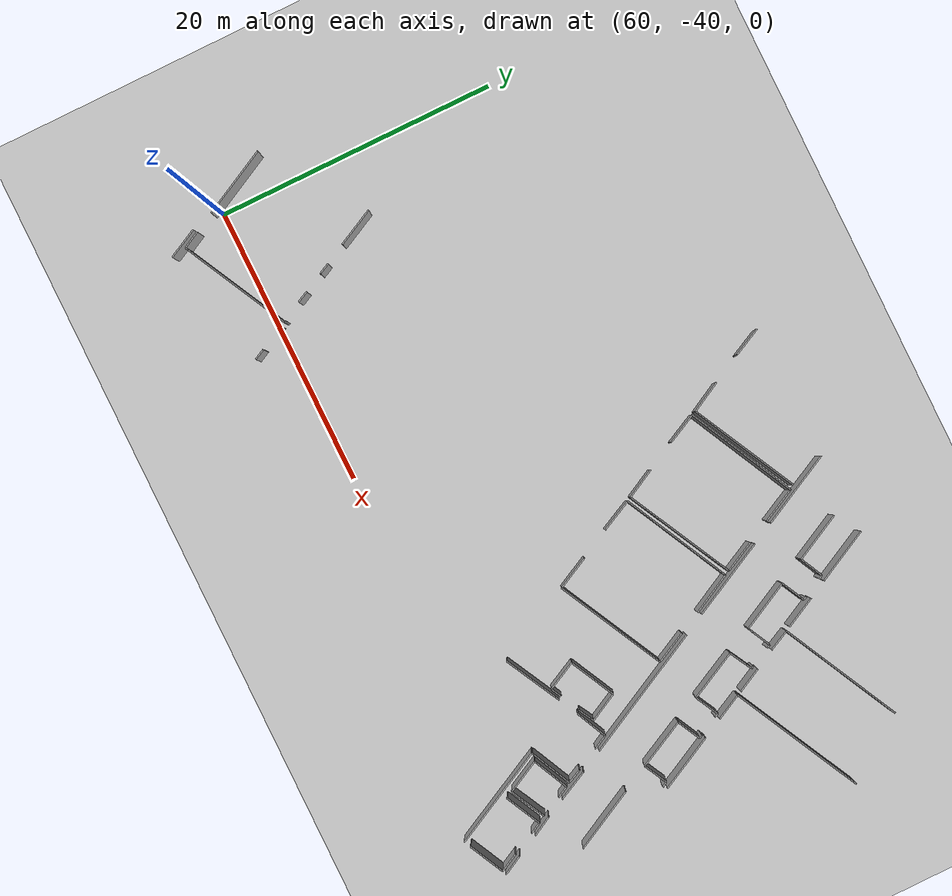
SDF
<sdf version="1.6">
 <world name="default">
  <model name="ground_plane">
   <static>1</static>
   <link name="link">
    <collision name="collision">
     <geometry><plane><normal>0 0 1</normal><size>100 100</size></plane></geometry>
     <surface><friction><ode><mu>100</mu><mu2>50</mu2></ode></friction></surface>
    </collision>
    <visual name="visual">
     <cast_shadows>0</cast_shadows>
     <geometry><plane><normal>0 0 1</normal><size>100 100</size></plane></geometry>
     <material>
      <script><uri>file://media/materials/scripts/gazebo.material</uri><name>Gazebo/Grey</name></script>
     </material>
    </visual>
   </link>
  </model>
  <model name="0510045926_A-40">
   <static>1</static>
   <link name="Wall_69">
    <collision name="Wall_69_Collision">
     <geometry><box><size>2.3912031758 0.1 2.5</size></box></geometry>
     <pose>1.1956015879 0 1.25 0 0 0</pose>
    </collision>
    <visual name="Wall_69_Visual">
     <pose>1.1956015879 0 1.25 0 0 0</pose>
     <geometry><box><size>2.3912031758 0.1 2.5</size></box></geometry>
     <material>
      <script><uri>file://media/materials/scripts/gazebo.material</uri><name>Gazebo/Grey</name></script>
      <ambient>1 1 1 1</ambient>
     </material>
    </visual>
    <pose>235.726467957 -119.05045595 0 0 0 2.04123266553</pose>
   </link>
   <link name="Wall_70">
    <collision name="Wall_70_Collision">
     <geometry><box><size>4.13078900254 0.1 2.5</size></box></geometry>
     <pose>2.06539450127 0 1.25 0 0 0</pose>
    </collision>
    <visual name="Wall_70_Visual">
     <pose>2.06539450127 0 1.25 0 0 0</pose>
     <geometry><box><size>4.13078900254 0.1 2.5</size></box></geometry>
     <material>
      <script><uri>file://media/materials/scripts/gazebo.material</uri><name>Gazebo/Grey</name></script>
      <ambient>1 1 1 1</ambient>
     </material>
    </visual>
    <pose>233.964856615 -115.636635932 0 0 0 2.04430977668</pose>
   </link>
   <link name="Wall_82">
    <collision name="Wall_82_Collision">
     <geometry><box><size>9.11722437358 0.1 2.5</size></box></geometry>
     <pose>4.55861218679 0 1.25 0 0 0</pose>
    </collision>
    <visual name="Wall_82_Visual">
     <pose>4.55861218679 0 1.25 0 0 0</pose>
     <geometry><box><size>9.11722437358 0.1 2.5</size></box></geometry>
     <material>
      <script><uri>file://media/materials/scripts/gazebo.material</uri><name>Gazebo/Grey</name></script>
      <ambient>1 1 1 1</ambient>
     </material>
    </visual>
    <pose>235.891460373 -119.366987556 0 0 0 0.470819425823</pose>
   </link>
   <link name="Wall_86">
    <collision name="Wall_86_Collision">
     <geometry><box><size>1.89134331663 0.1 2.5</size></box></geometry>
     <pose>0.945671658314 0 1.25 0 0 0</pose>
    </collision>
    <visual name="Wall_86_Visual">
     <pose>0.945671658314 0 1.25 0 0 0</pose>
     <geometry><box><size>1.89134331663 0.1 2.5</size></box></geometry>
     <material>
      <script><uri>file://media/materials/scripts/gazebo.material</uri><name>Gazebo/Grey</name></script>
      <ambient>1 1 1 1</ambient>
     </material>
    </visual>
    <pose>238.186124138 -123.877372559 0 0 0 2.0461480832</pose>
   </link>
   <link name="Wall_87">
    <collision name="Wall_87_Collision">
     <geometry><box><size>1.59802516987 0.1 2.5</size></box></geometry>
     <pose>0.799012584937 0 1.25 0 0 0</pose>
    </collision>
    <visual name="Wall_87_Visual">
     <pose>0.799012584937 0 1.25 0 0 0</pose>
     <geometry><box><size>1.59802516987 0.1 2.5</size></box></geometry>
     <material>
      <script><uri>file://media/materials/scripts/gazebo.material</uri><name>Gazebo/Grey</name></script>
      <ambient>1 1 1 1</ambient>
     </material>
    </visual>
    <pose>236.586966868 -120.805721429 0 0 0 2.02108866282</pose>
   </link>
   <link name="Wall_96">
    <collision name="Wall_96_Collision">
     <geometry><box><size>9.90516734899 0.1 2.5</size></box></geometry>
     <pose>4.95258367449 0 1.25 0 0 0</pose>
    </collision>
    <visual name="Wall_96_Visual">
     <pose>4.95258367449 0 1.25 0 0 0</pose>
     <geometry><box><size>9.90516734899 0.1 2.5</size></box></geometry>
     <material>
      <script><uri>file://media/materials/scripts/gazebo.material</uri><name>Gazebo/Grey</name></script>
      <ambient>1 1 1 1</ambient>
     </material>
    </visual>
    <pose>238.302888002 -124.164713199 0 0 0 0.473435037719</pose>
   </link>
   <link name="Wall_104">
    <collision name="Wall_104_Collision">
     <geometry><box><size>4.21026454566 0.1 2.5</size></box></geometry>
     <pose>2.10513227283 0 1.25 0 0 0</pose>
    </collision>
    <visual name="Wall_104_Visual">
     <pose>2.10513227283 0 1.25 0 0 0</pose>
     <geometry><box><size>4.21026454566 0.1 2.5</size></box></geometry>
     <material>
      <script><uri>file://media/materials/scripts/gazebo.material</uri><name>Gazebo/Grey</name></script>
      <ambient>1 1 1 1</ambient>
     </material>
    </visual>
    <pose>241.838802409 -131.105563417 0 0 0 2.04134632833</pose>
   </link>
   <link name="Wall_105">
    <collision name="Wall_105_Collision">
     <geometry><box><size>1.99934995767 0.1 2.5</size></box></geometry>
     <pose>0.999674978837 0 1.25 0 0 0</pose>
    </collision>
    <visual name="Wall_105_Visual">
     <pose>0.999674978837 0 1.25 0 0 0</pose>
     <geometry><box><size>1.99934995767 0.1 2.5</size></box></geometry>
     <material>
      <script><uri>file://media/materials/scripts/gazebo.material</uri><name>Gazebo/Grey</name></script>
      <ambient>1 1 1 1</ambient>
     </material>
    </visual>
    <pose>239.211615466 -125.945615961 0 0 0 2.04261999708</pose>
   </link>
   <link name="Wall_174">
    <collision name="Wall_174_Collision">
     <geometry><box><size>8.17603688049 0.1 2.5</size></box></geometry>
     <pose>4.08801844024 0 1.25 0 0 0</pose>
    </collision>
    <visual name="Wall_174_Visual">
     <pose>4.08801844024 0 1.25 0 0 0</pose>
     <geometry><box><size>8.17603688049 0.1 2.5</size></box></geometry>
     <material>
      <script><uri>file://media/materials/scripts/gazebo.material</uri><name>Gazebo/Grey</name></script>
      <ambient>1 1 1 1</ambient>
     </material>
    </visual>
    <pose>227.318200567 -114.657088645 0 0 0 -2.6688229583</pose>
   </link>
   <link name="Wall_175">
    <collision name="Wall_175_Collision">
     <geometry><box><size>2.39088924118 0.1 2.5</size></box></geometry>
     <pose>1.19544462059 0 1.25 0 0 0</pose>
    </collision>
    <visual name="Wall_175_Visual">
     <pose>1.19544462059 0 1.25 0 0 0</pose>
     <geometry><box><size>2.39088924118 0.1 2.5</size></box></geometry>
     <material>
      <script><uri>file://media/materials/scripts/gazebo.material</uri><name>Gazebo/Grey</name></script>
      <ambient>1 1 1 1</ambient>
     </material>
    </visual>
    <pose>220.038988977 -118.380079069 0 0 0 2.06322048625</pose>
   </link>
   <link name="Wall_176">
    <collision name="Wall_176_Collision">
     <geometry><box><size>2.16253494012 0.1 2.5</size></box></geometry>
     <pose>1.08126747006 0 1.25 0 0 0</pose>
    </collision>
    <visual name="Wall_176_Visual">
     <pose>1.08126747006 0 1.25 0 0 0</pose>
     <geometry><box><size>2.16253494012 0.1 2.5</size></box></geometry>
     <material>
      <script><uri>file://media/materials/scripts/gazebo.material</uri><name>Gazebo/Grey</name></script>
      <ambient>1 1 1 1</ambient>
     </material>
    </visual>
    <pose>217.855250884 -114.221000996 0 0 0 2.03103187555</pose>
   </link>
   <link name="Wall_177">
    <collision name="Wall_177_Collision">
     <geometry><box><size>8.24359890902 0.1 2.5</size></box></geometry>
     <pose>4.12179945451 0 1.25 0 0 0</pose>
    </collision>
    <visual name="Wall_177_Visual">
     <pose>4.12179945451 0 1.25 0 0 0</pose>
     <geometry><box><size>8.24359890902 0.1 2.5</size></box></geometry>
     <material>
      <script><uri>file://media/materials/scripts/gazebo.material</uri><name>Gazebo/Grey</name></script>
      <ambient>1 1 1 1</ambient>
     </material>
    </visual>
    <pose>220.159814193 -118.676557751 0 0 0 0.465754492511</pose>
   </link>
   <link name="Wall_178">
    <collision name="Wall_178_Collision">
     <geometry><box><size>2.62875515957 0.1 2.5</size></box></geometry>
     <pose>1.31437757979 0 1.25 0 0 0</pose>
    </collision>
    <visual name="Wall_178_Visual">
     <pose>1.31437757979 0 1.25 0 0 0</pose>
     <geometry><box><size>2.62875515957 0.1 2.5</size></box></geometry>
     <material>
      <script><uri>file://media/materials/scripts/gazebo.material</uri><name>Gazebo/Grey</name></script>
      <ambient>1 1 1 1</ambient>
     </material>
    </visual>
    <pose>227.525329509 -114.974381754 0 0 0 -1.10395315066</pose>
   </link>
   <link name="Wall_179">
    <collision name="Wall_179_Collision">
     <geometry><box><size>2.37878603092 0.1 2.5</size></box></geometry>
     <pose>1.18939301546 0 1.25 0 0 0</pose>
    </collision>
    <visual name="Wall_179_Visual">
     <pose>1.18939301546 0 1.25 0 0 0</pose>
     <geometry><box><size>2.37878603092 0.1 2.5</size></box></geometry>
     <material>
      <script><uri>file://media/materials/scripts/gazebo.material</uri><name>Gazebo/Grey</name></script>
      <ambient>1 1 1 1</ambient>
     </material>
    </visual>
    <pose>229.51716873 -118.930392238 0 0 0 -1.10404684275</pose>
   </link>
   <link name="Wall_180">
    <collision name="Wall_180_Collision">
     <geometry><box><size>8.20402652125 0.1 2.5</size></box></geometry>
     <pose>4.10201326062 0 1.25 0 0 0</pose>
    </collision>
    <visual name="Wall_180_Visual">
     <pose>4.10201326062 0 1.25 0 0 0</pose>
     <geometry><box><size>8.20402652125 0.1 2.5</size></box></geometry>
     <material>
      <script><uri>file://media/materials/scripts/gazebo.material</uri><name>Gazebo/Grey</name></script>
      <ambient>1 1 1 1</ambient>
     </material>
    </visual>
    <pose>230.587588763 -121.054733061 0 0 0 -2.66670925141</pose>
   </link>
   <link name="Wall_181">
    <collision name="Wall_181_Collision">
     <geometry><box><size>2.27302313342 0.1 2.5</size></box></geometry>
     <pose>1.13651156671 0 1.25 0 0 0</pose>
    </collision>
    <visual name="Wall_181_Visual">
     <pose>1.13651156671 0 1.25 0 0 0</pose>
     <geometry><box><size>2.27302313342 0.1 2.5</size></box></geometry>
     <material>
      <script><uri>file://media/materials/scripts/gazebo.material</uri><name>Gazebo/Grey</name></script>
      <ambient>1 1 1 1</ambient>
     </material>
    </visual>
    <pose>223.291370262 -124.805899113 0 0 0 2.05292335049</pose>
   </link>
   <link name="Wall_182">
    <collision name="Wall_182_Collision">
     <geometry><box><size>2.3113596115 0.1 2.5</size></box></geometry>
     <pose>1.15567980575 0 1.25 0 0 0</pose>
    </collision>
    <visual name="Wall_182_Visual">
     <pose>1.15567980575 0 1.25 0 0 0</pose>
     <geometry><box><size>2.3113596115 0.1 2.5</size></box></geometry>
     <material>
      <script><uri>file://media/materials/scripts/gazebo.material</uri><name>Gazebo/Grey</name></script>
      <ambient>1 1 1 1</ambient>
     </material>
    </visual>
    <pose>221.186067025 -120.747593332 0 0 0 2.03085866556</pose>
   </link>
   <link name="Wall_183">
    <collision name="Wall_183_Collision">
     <geometry><box><size>8.1835635664 0.1 2.5</size></box></geometry>
     <pose>4.0917817832 0 1.25 0 0 0</pose>
    </collision>
    <visual name="Wall_183_Visual">
     <pose>4.0917817832 0 1.25 0 0 0</pose>
     <geometry><box><size>8.1835635664 0.1 2.5</size></box></geometry>
     <material>
      <script><uri>file://media/materials/scripts/gazebo.material</uri><name>Gazebo/Grey</name></script>
      <ambient>1 1 1 1</ambient>
     </material>
    </visual>
    <pose>223.442147947 -125.088416898 0 0 0 0.469654001001</pose>
   </link>
   <link name="Wall_184">
    <collision name="Wall_184_Collision">
     <geometry><box><size>3.10703517878 0.1 2.5</size></box></geometry>
     <pose>1.55351758939 0 1.25 0 0 0</pose>
    </collision>
    <visual name="Wall_184_Visual">
     <pose>1.55351758939 0 1.25 0 0 0</pose>
     <geometry><box><size>3.10703517878 0.1 2.5</size></box></geometry>
     <material>
      <script><uri>file://media/materials/scripts/gazebo.material</uri><name>Gazebo/Grey</name></script>
      <ambient>1 1 1 1</ambient>
     </material>
    </visual>
    <pose>230.739635621 -121.384717895 0 0 0 -1.09147418768</pose>
   </link>
   <link name="Wall_185">
    <collision name="Wall_185_Collision">
     <geometry><box><size>2.41320970317 0.1 2.5</size></box></geometry>
     <pose>1.20660485158 0 1.25 0 0 0</pose>
    </collision>
    <visual name="Wall_185_Visual">
     <pose>1.20660485158 0 1.25 0 0 0</pose>
     <geometry><box><size>2.41320970317 0.1 2.5</size></box></geometry>
     <material>
      <script><uri>file://media/materials/scripts/gazebo.material</uri><name>Gazebo/Grey</name></script>
      <ambient>1 1 1 1</ambient>
     </material>
    </visual>
    <pose>232.954595356 -125.696858164 0 0 0 -1.10145680448</pose>
   </link>
   <link name="Wall_186">
    <collision name="Wall_186_Collision">
     <geometry><box><size>8.2267611673 0.1 2.5</size></box></geometry>
     <pose>4.11338058365 0 1.25 0 0 0</pose>
    </collision>
    <visual name="Wall_186_Visual">
     <pose>4.11338058365 0 1.25 0 0 0</pose>
     <geometry><box><size>8.2267611673 0.1 2.5</size></box></geometry>
     <material>
      <script><uri>file://media/materials/scripts/gazebo.material</uri><name>Gazebo/Grey</name></script>
      <ambient>1 1 1 1</ambient>
     </material>
    </visual>
    <pose>234.046083651 -127.849120781 0 0 0 -2.66909999182</pose>
   </link>
   <link name="Wall_187">
    <collision name="Wall_187_Collision">
     <geometry><box><size>2.51014294676 0.1 2.5</size></box></geometry>
     <pose>1.25507147338 0 1.25 0 0 0</pose>
    </collision>
    <visual name="Wall_187_Visual">
     <pose>1.25507147338 0 1.25 0 0 0</pose>
     <geometry><box><size>2.51014294676 0.1 2.5</size></box></geometry>
     <material>
      <script><uri>file://media/materials/scripts/gazebo.material</uri><name>Gazebo/Grey</name></script>
      <ambient>1 1 1 1</ambient>
     </material>
    </visual>
    <pose>226.720674184 -131.593179467 0 0 0 2.03914722962</pose>
   </link>
   <link name="Wall_188">
    <collision name="Wall_188_Collision">
     <geometry><box><size>2.43325787115 0.1 2.5</size></box></geometry>
     <pose>1.21662893558 0 1.25 0 0 0</pose>
    </collision>
    <visual name="Wall_188_Visual">
     <pose>1.21662893558 0 1.25 0 0 0</pose>
     <geometry><box><size>2.43325787115 0.1 2.5</size></box></geometry>
     <material>
      <script><uri>file://media/materials/scripts/gazebo.material</uri><name>Gazebo/Grey</name></script>
      <ambient>1 1 1 1</ambient>
     </material>
    </visual>
    <pose>224.509775801 -127.274947171 0 0 0 2.02501993561</pose>
   </link>
   <link name="Wall_189">
    <collision name="Wall_189_Collision">
     <geometry><box><size>3.48118240402 0.1 2.5</size></box></geometry>
     <pose>1.74059120201 0 1.25 0 0 0</pose>
    </collision>
    <visual name="Wall_189_Visual">
     <pose>1.74059120201 0 1.25 0 0 0</pose>
     <geometry><box><size>3.48118240402 0.1 2.5</size></box></geometry>
     <material>
      <script><uri>file://media/materials/scripts/gazebo.material</uri><name>Gazebo/Grey</name></script>
      <ambient>1 1 1 1</ambient>
     </material>
    </visual>
    <pose>231.489970365 -133.177614337 0 0 0 0.467952023817</pose>
   </link>
   <link name="Wall_190">
    <collision name="Wall_190_Collision">
     <geometry><box><size>2.19514655659 0.1 2.5</size></box></geometry>
     <pose>1.09757327829 0 1.25 0 0 0</pose>
    </collision>
    <visual name="Wall_190_Visual">
     <pose>1.09757327829 0 1.25 0 0 0</pose>
     <geometry><box><size>2.19514655659 0.1 2.5</size></box></geometry>
     <material>
      <script><uri>file://media/materials/scripts/gazebo.material</uri><name>Gazebo/Grey</name></script>
      <ambient>1 1 1 1</ambient>
     </material>
    </visual>
    <pose>234.596904488 -131.607394199 0 0 0 -1.09515094845</pose>
   </link>
   <link name="Wall_191">
    <collision name="Wall_191_Collision">
     <geometry><box><size>1.18317599547 0.1 2.5</size></box></geometry>
     <pose>0.591587997737 0 1.25 0 0 0</pose>
    </collision>
    <visual name="Wall_191_Visual">
     <pose>0.591587997737 0 1.25 0 0 0</pose>
     <geometry><box><size>1.18317599547 0.1 2.5</size></box></geometry>
     <material>
      <script><uri>file://media/materials/scripts/gazebo.material</uri><name>Gazebo/Grey</name></script>
      <ambient>1 1 1 1</ambient>
     </material>
    </visual>
    <pose>235.602089058 -133.558873736 0 0 0 -2.63245205993</pose>
   </link>
   <link name="Wall_192">
    <collision name="Wall_192_Collision">
     <geometry><box><size>0.809900689184 0.1 2.5</size></box></geometry>
     <pose>0.404950344592 0 1.25 0 0 0</pose>
    </collision>
    <visual name="Wall_192_Visual">
     <pose>0.404950344592 0 1.25 0 0 0</pose>
     <geometry><box><size>0.809900689184 0.1 2.5</size></box></geometry>
     <material>
      <script><uri>file://media/materials/scripts/gazebo.material</uri><name>Gazebo/Grey</name></script>
      <ambient>1 1 1 1</ambient>
     </material>
    </visual>
    <pose>233.210968188 -134.806470241 0 0 0 -2.66561037441</pose>
   </link>
   <link name="Wall_193">
    <collision name="Wall_193_Collision">
     <geometry><box><size>2.23653647357 0.1 2.5</size></box></geometry>
     <pose>1.11826823678 0 1.25 0 0 0</pose>
    </collision>
    <visual name="Wall_193_Visual">
     <pose>1.11826823678 0 1.25 0 0 0</pose>
     <geometry><box><size>2.23653647357 0.1 2.5</size></box></geometry>
     <material>
      <script><uri>file://media/materials/scripts/gazebo.material</uri><name>Gazebo/Grey</name></script>
      <ambient>1 1 1 1</ambient>
     </material>
    </visual>
    <pose>232.491093582 -135.177576261 0 0 0 2.03490074218</pose>
   </link>
   <link name="Wall_195">
    <collision name="Wall_195_Collision">
     <geometry><box><size>4.38283378188 0.1 2.5</size></box></geometry>
     <pose>2.19141689094 0 1.25 0 0 0</pose>
    </collision>
    <visual name="Wall_195_Visual">
     <pose>2.19141689094 0 1.25 0 0 0</pose>
     <geometry><box><size>4.38283378188 0.1 2.5</size></box></geometry>
     <material>
      <script><uri>file://media/materials/scripts/gazebo.material</uri><name>Gazebo/Grey</name></script>
      <ambient>1 1 1 1</ambient>
     </material>
    </visual>
    <pose>229.483916412 -137.045036584 0 0 0 0.48278935657</pose>
   </link>
   <link name="Wall_196">
    <collision name="Wall_196_Collision">
     <geometry><box><size>2.34710147352 0.1 2.5</size></box></geometry>
     <pose>1.17355073676 0 1.25 0 0 0</pose>
    </collision>
    <visual name="Wall_196_Visual">
     <pose>1.17355073676 0 1.25 0 0 0</pose>
     <geometry><box><size>2.34710147352 0.1 2.5</size></box></geometry>
     <material>
      <script><uri>file://media/materials/scripts/gazebo.material</uri><name>Gazebo/Grey</name></script>
      <ambient>1 1 1 1</ambient>
     </material>
    </visual>
    <pose>234.723821732 -134.322915543 0 0 0 0.444010040816</pose>
   </link>
   <link name="Wall_197">
    <collision name="Wall_197_Collision">
     <geometry><box><size>1.11195791924 0.1 2.5</size></box></geometry>
     <pose>0.555978959618 0 1.25 0 0 0</pose>
    </collision>
    <visual name="Wall_197_Visual">
     <pose>0.555978959618 0 1.25 0 0 0</pose>
     <geometry><box><size>1.11195791924 0.1 2.5</size></box></geometry>
     <material>
      <script><uri>file://media/materials/scripts/gazebo.material</uri><name>Gazebo/Grey</name></script>
      <ambient>1 1 1 1</ambient>
     </material>
    </visual>
    <pose>236.8433397 -133.31468496 0 0 0 -1.06824314486</pose>
   </link>
   <link name="Wall_198">
    <collision name="Wall_198_Collision">
     <geometry><box><size>1.07430603062 0.1 2.5</size></box></geometry>
     <pose>0.53715301531 0 1.25 0 0 0</pose>
    </collision>
    <visual name="Wall_198_Visual">
     <pose>0.53715301531 0 1.25 0 0 0</pose>
     <geometry><box><size>1.07430603062 0.1 2.5</size></box></geometry>
     <material>
      <script><uri>file://media/materials/scripts/gazebo.material</uri><name>Gazebo/Grey</name></script>
      <ambient>1 1 1 1</ambient>
     </material>
    </visual>
    <pose>238.170894069 -135.86648306 0 0 0 -1.1262755332</pose>
   </link>
   <link name="Wall_199">
    <collision name="Wall_199_Collision">
     <geometry><box><size>3.19497914719 0.1 2.5</size></box></geometry>
     <pose>1.5974895736 0 1.25 0 0 0</pose>
    </collision>
    <visual name="Wall_199_Visual">
     <pose>1.5974895736 0 1.25 0 0 0</pose>
     <geometry><box><size>3.19497914719 0.1 2.5</size></box></geometry>
     <material>
      <script><uri>file://media/materials/scripts/gazebo.material</uri><name>Gazebo/Grey</name></script>
      <ambient>1 1 1 1</ambient>
     </material>
    </visual>
    <pose>238.632872835 -136.836384635 0 0 0 -2.69272614414</pose>
   </link>
   <link name="Wall_200">
    <collision name="Wall_200_Collision">
     <geometry><box><size>7.48707136855 0.1 2.5</size></box></geometry>
     <pose>3.74353568428 0 1.25 0 0 0</pose>
    </collision>
    <visual name="Wall_200_Visual">
     <pose>3.74353568428 0 1.25 0 0 0</pose>
     <geometry><box><size>7.48707136855 0.1 2.5</size></box></geometry>
     <material>
      <script><uri>file://media/materials/scripts/gazebo.material</uri><name>Gazebo/Grey</name></script>
      <ambient>1 1 1 1</ambient>
     </material>
    </visual>
    <pose>235.75438975 -138.222828605 0 0 0 -1.10225140425</pose>
   </link>
   <link name="Wall_202">
    <collision name="Wall_202_Collision">
     <geometry><box><size>2.55070641359 0.1 2.5</size></box></geometry>
     <pose>1.27535320679 0 1.25 0 0 0</pose>
    </collision>
    <visual name="Wall_202_Visual">
     <pose>1.27535320679 0 1.25 0 0 0</pose>
     <geometry><box><size>2.55070641359 0.1 2.5</size></box></geometry>
     <material>
      <script><uri>file://media/materials/scripts/gazebo.material</uri><name>Gazebo/Grey</name></script>
      <ambient>1 1 1 1</ambient>
     </material>
    </visual>
    <pose>237.498232677 -140.565974756 0 0 0 2.0462824427</pose>
   </link>
   <link name="Wall_203">
    <collision name="Wall_203_Collision">
     <geometry><box><size>2.72503545303 0.1 2.5</size></box></geometry>
     <pose>1.36251772651 0 1.25 0 0 0</pose>
    </collision>
    <visual name="Wall_203_Visual">
     <pose>1.36251772651 0 1.25 0 0 0</pose>
     <geometry><box><size>2.72503545303 0.1 2.5</size></box></geometry>
     <material>
      <script><uri>file://media/materials/scripts/gazebo.material</uri><name>Gazebo/Grey</name></script>
      <ambient>1 1 1 1</ambient>
     </material>
    </visual>
    <pose>236.330594036 -138.298217447 0 0 0 0.447150480643</pose>
   </link>
   <link name="Wall_204">
    <collision name="Wall_204_Collision">
     <geometry><box><size>0.899933437322 0.1 2.5</size></box></geometry>
     <pose>0.449966718661 0 1.25 0 0 0</pose>
    </collision>
    <visual name="Wall_204_Visual">
     <pose>0.449966718661 0 1.25 0 0 0</pose>
     <geometry><box><size>0.899933437322 0.1 2.5</size></box></geometry>
     <material>
      <script><uri>file://media/materials/scripts/gazebo.material</uri><name>Gazebo/Grey</name></script>
      <ambient>1 1 1 1</ambient>
     </material>
    </visual>
    <pose>238.787711872 -137.119917758 0 0 0 -1.08671250194</pose>
   </link>
   <link name="Wall_205">
    <collision name="Wall_205_Collision">
     <geometry><box><size>2.71287946158 0.1 2.5</size></box></geometry>
     <pose>1.35643973079 0 1.25 0 0 0</pose>
    </collision>
    <visual name="Wall_205_Visual">
     <pose>1.35643973079 0 1.25 0 0 0</pose>
     <geometry><box><size>2.71287946158 0.1 2.5</size></box></geometry>
     <material>
      <script><uri>file://media/materials/scripts/gazebo.material</uri><name>Gazebo/Grey</name></script>
      <ambient>1 1 1 1</ambient>
     </material>
    </visual>
    <pose>239.904583616 -139.313301562 0 0 0 -2.66162508748</pose>
   </link>
   <link name="Wall_207">
    <collision name="Wall_207_Collision">
     <geometry><box><size>2.72058041384 0.1 2.5</size></box></geometry>
     <pose>1.36029020692 0 1.25 0 0 0</pose>
    </collision>
    <visual name="Wall_207_Visual">
     <pose>1.36029020692 0 1.25 0 0 0</pose>
     <geometry><box><size>2.72058041384 0.1 2.5</size></box></geometry>
     <material>
      <script><uri>file://media/materials/scripts/gazebo.material</uri><name>Gazebo/Grey</name></script>
      <ambient>1 1 1 1</ambient>
     </material>
    </visual>
    <pose>237.731760406 -141.036076226 0 0 0 0.464982833109</pose>
   </link>
   <link name="Wall_208">
    <collision name="Wall_208_Collision">
     <geometry><box><size>0.857443166709 0.1 2.5</size></box></geometry>
     <pose>0.428721583355 0 1.25 0 0 0</pose>
    </collision>
    <visual name="Wall_208_Visual">
     <pose>0.428721583355 0 1.25 0 0 0</pose>
     <geometry><box><size>0.857443166709 0.1 2.5</size></box></geometry>
     <material>
      <script><uri>file://media/materials/scripts/gazebo.material</uri><name>Gazebo/Grey</name></script>
      <ambient>1 1 1 1</ambient>
     </material>
    </visual>
    <pose>240.163494793 -139.816147681 0 0 0 -1.07735621097</pose>
   </link>
   <link name="Wall_209">
    <collision name="Wall_209_Collision">
     <geometry><box><size>1.40656833294 0.1 2.5</size></box></geometry>
     <pose>0.70328416647 0 1.25 0 0 0</pose>
    </collision>
    <visual name="Wall_209_Visual">
     <pose>0.70328416647 0 1.25 0 0 0</pose>
     <geometry><box><size>1.40656833294 0.1 2.5</size></box></geometry>
     <material>
      <script><uri>file://media/materials/scripts/gazebo.material</uri><name>Gazebo/Grey</name></script>
      <ambient>1 1 1 1</ambient>
     </material>
    </visual>
    <pose>241.353978538 -142.175285405 0 0 0 -1.09665677027</pose>
   </link>
   <link name="Wall_210">
    <collision name="Wall_210_Collision">
     <geometry><box><size>2.7290942738 0.1 2.5</size></box></geometry>
     <pose>1.3645471369 0 1.25 0 0 0</pose>
    </collision>
    <visual name="Wall_210_Visual">
     <pose>1.3645471369 0 1.25 0 0 0</pose>
     <geometry><box><size>2.7290942738 0.1 2.5</size></box></geometry>
     <material>
      <script><uri>file://media/materials/scripts/gazebo.material</uri><name>Gazebo/Grey</name></script>
      <ambient>1 1 1 1</ambient>
     </material>
    </visual>
    <pose>241.996179791 -143.426689427 0 0 0 -2.67661398593</pose>
   </link>
   <link name="Wall_212">
    <collision name="Wall_212_Collision">
     <geometry><box><size>1.52942800715 0.1 2.5</size></box></geometry>
     <pose>0.764714003574 0 1.25 0 0 0</pose>
    </collision>
    <visual name="Wall_212_Visual">
     <pose>0.764714003574 0 1.25 0 0 0</pose>
     <geometry><box><size>1.52942800715 0.1 2.5</size></box></geometry>
     <material>
      <script><uri>file://media/materials/scripts/gazebo.material</uri><name>Gazebo/Grey</name></script>
      <ambient>1 1 1 1</ambient>
     </material>
    </visual>
    <pose>242.290627796 -143.321601949 0 0 0 2.06161277614</pose>
   </link>
   <link name="Wall_213">
    <collision name="Wall_213_Collision">
     <geometry><box><size>1.50109577711 0.1 2.5</size></box></geometry>
     <pose>0.750547888556 0 1.25 0 0 0</pose>
    </collision>
    <visual name="Wall_213_Visual">
     <pose>0.750547888556 0 1.25 0 0 0</pose>
     <geometry><box><size>1.50109577711 0.1 2.5</size></box></geometry>
     <material>
      <script><uri>file://media/materials/scripts/gazebo.material</uri><name>Gazebo/Grey</name></script>
      <ambient>1 1 1 1</ambient>
     </material>
    </visual>
    <pose>240.805696046 -140.422050602 0 0 0 2.06787578469</pose>
   </link>
   <link name="Wall_214">
    <collision name="Wall_214_Collision">
     <geometry><box><size>2.31674607165 0.1 2.5</size></box></geometry>
     <pose>1.15837303583 0 1.25 0 0 0</pose>
    </collision>
    <visual name="Wall_214_Visual">
     <pose>1.15837303583 0 1.25 0 0 0</pose>
     <geometry><box><size>2.31674607165 0.1 2.5</size></box></geometry>
     <material>
      <script><uri>file://media/materials/scripts/gazebo.material</uri><name>Gazebo/Grey</name></script>
      <ambient>1 1 1 1</ambient>
     </material>
    </visual>
    <pose>239.414683056 -137.753996307 0 0 0 2.02689801865</pose>
   </link>
   <link name="Wall_215">
    <collision name="Wall_215_Collision">
     <geometry><box><size>9.69136814513 0.1 2.5</size></box></geometry>
     <pose>4.84568407256 0 1.25 0 0 0</pose>
    </collision>
    <visual name="Wall_215_Visual">
     <pose>4.84568407256 0 1.25 0 0 0</pose>
     <geometry><box><size>9.69136814513 0.1 2.5</size></box></geometry>
     <material>
      <script><uri>file://media/materials/scripts/gazebo.material</uri><name>Gazebo/Grey</name></script>
      <ambient>1 1 1 1</ambient>
     </material>
    </visual>
    <pose>237.597228127 -134.113755925 0 0 0 2.04252622437</pose>
   </link>
   <link name="Wall_216">
    <collision name="Wall_216_Collision">
     <geometry><box><size>5.90102663049 0.1 2.5</size></box></geometry>
     <pose>2.95051331525 0 1.25 0 0 0</pose>
    </collision>
    <visual name="Wall_216_Visual">
     <pose>2.95051331525 0 1.25 0 0 0</pose>
     <geometry><box><size>5.90102663049 0.1 2.5</size></box></geometry>
     <material>
      <script><uri>file://media/materials/scripts/gazebo.material</uri><name>Gazebo/Grey</name></script>
      <ambient>1 1 1 1</ambient>
     </material>
    </visual>
    <pose>232.392351967 -123.95606125 0 0 0 2.04086914844</pose>
   </link>
   <link name="Wall_217">
    <collision name="Wall_217_Collision">
     <geometry><box><size>5.60859368446 0.1 2.5</size></box></geometry>
     <pose>2.80429684223 0 1.25 0 0 0</pose>
    </collision>
    <visual name="Wall_217_Visual">
     <pose>2.80429684223 0 1.25 0 0 0</pose>
     <geometry><box><size>5.60859368446 0.1 2.5</size></box></geometry>
     <material>
      <script><uri>file://media/materials/scripts/gazebo.material</uri><name>Gazebo/Grey</name></script>
      <ambient>1 1 1 1</ambient>
     </material>
    </visual>
    <pose>228.93563392 -117.14466662 0 0 0 2.04075887432</pose>
   </link>
   <link name="Wall_242">
    <collision name="Wall_242_Collision">
     <geometry><box><size>3.67483817713 0.1 2.5</size></box></geometry>
     <pose>1.83741908856 0 1.25 0 0 0</pose>
    </collision>
    <visual name="Wall_242_Visual">
     <pose>1.83741908856 0 1.25 0 0 0</pose>
     <geometry><box><size>3.67483817713 0.1 2.5</size></box></geometry>
     <material>
      <script><uri>file://media/materials/scripts/gazebo.material</uri><name>Gazebo/Grey</name></script>
      <ambient>1 1 1 1</ambient>
     </material>
    </visual>
    <pose>230.342892317 -113.110475115 0 0 0 -1.09843743712</pose>
   </link>
   <link name="Wall_243">
    <collision name="Wall_243_Collision">
     <geometry><box><size>1.73956765098 0.1 2.5</size></box></geometry>
     <pose>0.86978382549 0 1.25 0 0 0</pose>
    </collision>
    <visual name="Wall_243_Visual">
     <pose>0.86978382549 0 1.25 0 0 0</pose>
     <geometry><box><size>1.73956765098 0.1 2.5</size></box></geometry>
     <material>
      <script><uri>file://media/materials/scripts/gazebo.material</uri><name>Gazebo/Grey</name></script>
      <ambient>1 1 1 1</ambient>
     </material>
    </visual>
    <pose>232.014900084 -116.382909324 0 0 0 0.45960169007</pose>
   </link>
   <link name="Wall_244">
    <collision name="Wall_244_Collision">
     <geometry><box><size>0.279483643455 0.1 2.5</size></box></geometry>
     <pose>0.139741821728 0 1.25 0 0 0</pose>
    </collision>
    <visual name="Wall_244_Visual">
     <pose>0.139741821728 0 1.25 0 0 0</pose>
     <geometry><box><size>0.279483643455 0.1 2.5</size></box></geometry>
     <material>
      <script><uri>file://media/materials/scripts/gazebo.material</uri><name>Gazebo/Grey</name></script>
      <ambient>1 1 1 1</ambient>
     </material>
    </visual>
    <pose>233.573951505 -115.611252483 0 0 0 -1.03723030177</pose>
   </link>
   <link name="Wall_245">
    <collision name="Wall_245_Collision">
     <geometry><box><size>0.245136442399 0.1 2.5</size></box></geometry>
     <pose>0.1225682212 0 1.25 0 0 0</pose>
    </collision>
    <visual name="Wall_245_Visual">
     <pose>0.1225682212 0 1.25 0 0 0</pose>
     <geometry><box><size>0.245136442399 0.1 2.5</size></box></geometry>
     <material>
      <script><uri>file://media/materials/scripts/gazebo.material</uri><name>Gazebo/Grey</name></script>
      <ambient>1 1 1 1</ambient>
     </material>
    </visual>
    <pose>234.421758692 -117.180964952 0 0 0 -1.14374034796</pose>
   </link>
   <link name="Wall_246">
    <collision name="Wall_246_Collision">
     <geometry><box><size>1.80426396298 0.1 2.5</size></box></geometry>
     <pose>0.902131981489 0 1.25 0 0 0</pose>
    </collision>
    <visual name="Wall_246_Visual">
     <pose>0.902131981489 0 1.25 0 0 0</pose>
     <geometry><box><size>1.80426396298 0.1 2.5</size></box></geometry>
     <material>
      <script><uri>file://media/materials/scripts/gazebo.material</uri><name>Gazebo/Grey</name></script>
      <ambient>1 1 1 1</ambient>
     </material>
    </visual>
    <pose>234.523292487 -117.404085466 0 0 0 -2.67555420983</pose>
   </link>
   <link name="Wall_247">
    <collision name="Wall_247_Collision">
     <geometry><box><size>3.77418290184 0.1 2.5</size></box></geometry>
     <pose>1.88709145092 0 1.25 0 0 0</pose>
    </collision>
    <visual name="Wall_247_Visual">
     <pose>1.88709145092 0 1.25 0 0 0</pose>
     <geometry><box><size>3.77418290184 0.1 2.5</size></box></geometry>
     <material>
      <script><uri>file://media/materials/scripts/gazebo.material</uri><name>Gazebo/Grey</name></script>
      <ambient>1 1 1 1</ambient>
     </material>
    </visual>
    <pose>232.911443493 -118.214832818 0 0 0 -1.09806516808</pose>
   </link>
   <link name="Wall_248">
    <collision name="Wall_248_Collision">
     <geometry><box><size>1.78405625894 0.1 2.5</size></box></geometry>
     <pose>0.892028129469 0 1.25 0 0 0</pose>
    </collision>
    <visual name="Wall_248_Visual">
     <pose>0.892028129469 0 1.25 0 0 0</pose>
     <geometry><box><size>1.78405625894 0.1 2.5</size></box></geometry>
     <material>
      <script><uri>file://media/materials/scripts/gazebo.material</uri><name>Gazebo/Grey</name></script>
      <ambient>1 1 1 1</ambient>
     </material>
    </visual>
    <pose>234.629902972 -121.57509376 0 0 0 0.465683747699</pose>
   </link>
   <link name="Wall_249">
    <collision name="Wall_249_Collision">
     <geometry><box><size>0.274034168243 0.1 2.5</size></box></geometry>
     <pose>0.137017084122 0 1.25 0 0 0</pose>
    </collision>
    <visual name="Wall_249_Visual">
     <pose>0.137017084122 0 1.25 0 0 0</pose>
     <geometry><box><size>0.274034168243 0.1 2.5</size></box></geometry>
     <material>
      <script><uri>file://media/materials/scripts/gazebo.material</uri><name>Gazebo/Grey</name></script>
      <ambient>1 1 1 1</ambient>
     </material>
    </visual>
    <pose>236.223983552 -120.773992118 0 0 0 -1.11004846112</pose>
   </link>
   <link name="Wall_250">
    <collision name="Wall_250_Collision">
     <geometry><box><size>0.190262282907 0.1 2.5</size></box></geometry>
     <pose>0.0951311414534 0 1.25 0 0 0</pose>
    </collision>
    <visual name="Wall_250_Visual">
     <pose>0.0951311414534 0 1.25 0 0 0</pose>
     <geometry><box><size>0.190262282907 0.1 2.5</size></box></geometry>
     <material>
      <script><uri>file://media/materials/scripts/gazebo.material</uri><name>Gazebo/Grey</name></script>
      <ambient>1 1 1 1</ambient>
     </material>
    </visual>
    <pose>237.028638876 -122.376195402 0 0 0 -1.11490512549</pose>
   </link>
   <link name="Wall_251">
    <collision name="Wall_251_Collision">
     <geometry><box><size>1.76149116818 0.1 2.5</size></box></geometry>
     <pose>0.880745584088 0 1.25 0 0 0</pose>
    </collision>
    <visual name="Wall_251_Visual">
     <pose>0.880745584088 0 1.25 0 0 0</pose>
     <geometry><box><size>1.76149116818 0.1 2.5</size></box></geometry>
     <material>
      <script><uri>file://media/materials/scripts/gazebo.material</uri><name>Gazebo/Grey</name></script>
      <ambient>1 1 1 1</ambient>
     </material>
    </visual>
    <pose>237.112404257 -122.547026012 0 0 0 -2.64159039792</pose>
   </link>
   <link name="Wall_252">
    <collision name="Wall_252_Collision">
     <geometry><box><size>3.74269891931 0.1 2.5</size></box></geometry>
     <pose>1.87134945965 0 1.25 0 0 0</pose>
    </collision>
    <visual name="Wall_252_Visual">
     <pose>1.87134945965 0 1.25 0 0 0</pose>
     <geometry><box><size>3.74269891931 0.1 2.5</size></box></geometry>
     <material>
      <script><uri>file://media/materials/scripts/gazebo.material</uri><name>Gazebo/Grey</name></script>
      <ambient>1 1 1 1</ambient>
     </material>
    </visual>
    <pose>235.56655223 -123.391533351 0 0 0 -1.10593549425</pose>
   </link>
   <link name="Wall_253">
    <collision name="Wall_253_Collision">
     <geometry><box><size>1.78304815517 0.1 2.5</size></box></geometry>
     <pose>0.891524077587 0 1.25 0 0 0</pose>
    </collision>
    <visual name="Wall_253_Visual">
     <pose>0.891524077587 0 1.25 0 0 0</pose>
     <geometry><box><size>1.78304815517 0.1 2.5</size></box></geometry>
     <material>
      <script><uri>file://media/materials/scripts/gazebo.material</uri><name>Gazebo/Grey</name></script>
      <ambient>1 1 1 1</ambient>
     </material>
    </visual>
    <pose>237.24439819 -126.737071892 0 0 0 0.480201333971</pose>
   </link>
   <link name="Wall_254">
    <collision name="Wall_254_Collision">
     <geometry><box><size>0.29563818423 0.1 2.5</size></box></geometry>
     <pose>0.147819092115 0 1.25 0 0 0</pose>
    </collision>
    <visual name="Wall_254_Visual">
     <pose>0.147819092115 0 1.25 0 0 0</pose>
     <geometry><box><size>0.29563818423 0.1 2.5</size></box></geometry>
     <material>
      <script><uri>file://media/materials/scripts/gazebo.material</uri><name>Gazebo/Grey</name></script>
      <ambient>1 1 1 1</ambient>
     </material>
    </visual>
    <pose>238.825787046 -125.913378981 0 0 0 -1.04952029032</pose>
   </link>
   <link name="Wall_255">
    <collision name="Wall_255_Collision">
     <geometry><box><size>0.242081592482 0.1 2.5</size></box></geometry>
     <pose>0.121040796241 0 1.25 0 0 0</pose>
    </collision>
    <visual name="Wall_255_Visual">
     <pose>0.121040796241 0 1.25 0 0 0</pose>
     <geometry><box><size>0.242081592482 0.1 2.5</size></box></geometry>
     <material>
      <script><uri>file://media/materials/scripts/gazebo.material</uri><name>Gazebo/Grey</name></script>
      <ambient>1 1 1 1</ambient>
     </material>
    </visual>
    <pose>239.676132578 -127.49045265 0 0 0 -1.17237560535</pose>
   </link>
   <link name="Wall_256">
    <collision name="Wall_256_Collision">
     <geometry><box><size>1.77507848952 0.1 2.5</size></box></geometry>
     <pose>0.887539244759 0 1.25 0 0 0</pose>
    </collision>
    <visual name="Wall_256_Visual">
     <pose>0.887539244759 0 1.25 0 0 0</pose>
     <geometry><box><size>1.77507848952 0.1 2.5</size></box></geometry>
     <material>
      <script><uri>file://media/materials/scripts/gazebo.material</uri><name>Gazebo/Grey</name></script>
      <ambient>1 1 1 1</ambient>
     </material>
    </visual>
    <pose>239.770051338 -127.713573165 0 0 0 -2.66694523243</pose>
   </link>
   <link name="Wall_257">
    <collision name="Wall_257_Collision">
     <geometry><box><size>3.68707240509 0.1 2.5</size></box></geometry>
     <pose>1.84353620255 0 1.25 0 0 0</pose>
    </collision>
    <visual name="Wall_257_Visual">
     <pose>1.84353620255 0 1.25 0 0 0</pose>
     <geometry><box><size>3.68707240509 0.1 2.5</size></box></geometry>
     <material>
      <script><uri>file://media/materials/scripts/gazebo.material</uri><name>Gazebo/Grey</name></script>
      <ambient>1 1 1 1</ambient>
     </material>
    </visual>
    <pose>238.191200828 -128.524828186 0 0 0 -1.10684083603</pose>
   </link>
   <link name="Wall_258">
    <collision name="Wall_258_Collision">
     <geometry><box><size>1.77275461698 0.1 2.5</size></box></geometry>
     <pose>0.88637730849 0 1.25 0 0 0</pose>
    </collision>
    <visual name="Wall_258_Visual">
     <pose>0.88637730849 0 1.25 0 0 0</pose>
     <geometry><box><size>1.77275461698 0.1 2.5</size></box></geometry>
     <material>
      <script><uri>file://media/materials/scripts/gazebo.material</uri><name>Gazebo/Grey</name></script>
      <ambient>1 1 1 1</ambient>
     </material>
    </visual>
    <pose>239.841124994 -131.822138175 0 0 0 0.481450262396</pose>
   </link>
   <link name="Wall_259">
    <collision name="Wall_259_Collision">
     <geometry><box><size>0.40681805482 0.1 2.5</size></box></geometry>
     <pose>0.20340902741 0 1.25 0 0 0</pose>
    </collision>
    <visual name="Wall_259_Visual">
     <pose>0.20340902741 0 1.25 0 0 0</pose>
     <geometry><box><size>0.40681805482 0.1 2.5</size></box></geometry>
     <material>
      <script><uri>file://media/materials/scripts/gazebo.material</uri><name>Gazebo/Grey</name></script>
      <ambient>1 1 1 1</ambient>
     </material>
    </visual>
    <pose>241.41236047 -131.001237443 0 0 0 -0.996984532448</pose>
   </link>
   <link name="Wall_262">
    <collision name="Wall_262_Collision">
     <geometry><box><size>4.75372255008 0.1 2.5</size></box></geometry>
     <pose>2.37686127504 0 1.25 0 0 0</pose>
    </collision>
    <visual name="Wall_262_Visual">
     <pose>2.37686127504 0 1.25 0 0 0</pose>
     <geometry><box><size>4.75372255008 0.1 2.5</size></box></geometry>
     <material>
      <script><uri>file://media/materials/scripts/gazebo.material</uri><name>Gazebo/Grey</name></script>
      <ambient>1 1 1 1</ambient>
     </material>
    </visual>
    <pose>240.813311081 -133.711428263 0 0 0 -1.09668914796</pose>
   </link>
   <link name="Wall_2080">
    <collision name="Wall_2080_Collision">
     <geometry><box><size>2.86781455505 0.1 2.5</size></box></geometry>
     <pose>1.43390727753 0 1.25 0 0 0</pose>
    </collision>
    <visual name="Wall_2080_Visual">
     <pose>1.43390727753 0 1.25 0 0 0</pose>
     <geometry><box><size>2.86781455505 0.1 2.5</size></box></geometry>
     <material>
      <script><uri>file://media/materials/scripts/gazebo.material</uri><name>Gazebo/Grey</name></script>
      <ambient>1 1 1 1</ambient>
     </material>
    </visual>
    <pose>198.372692486 -132.103386787 0 0 0 -1.10869247622</pose>
   </link>
   <link name="Wall_2081">
    <collision name="Wall_2081_Collision">
     <geometry><box><size>0.867985386685 0.1 2.5</size></box></geometry>
     <pose>0.433992693343 0 1.25 0 0 0</pose>
    </collision>
    <visual name="Wall_2081_Visual">
     <pose>0.433992693343 0 1.25 0 0 0</pose>
     <geometry><box><size>0.867985386685 0.1 2.5</size></box></geometry>
     <material>
      <script><uri>file://media/materials/scripts/gazebo.material</uri><name>Gazebo/Grey</name></script>
      <ambient>1 1 1 1</ambient>
     </material>
    </visual>
    <pose>200.390930494 -136.085542222 0 0 0 -1.11473423801</pose>
   </link>
   <link name="Wall_2082">
    <collision name="Wall_2082_Collision">
     <geometry><box><size>0.87563825798 0.1 2.5</size></box></geometry>
     <pose>0.43781912899 0 1.25 0 0 0</pose>
    </collision>
    <visual name="Wall_2082_Visual">
     <pose>0.43781912899 0 1.25 0 0 0</pose>
     <geometry><box><size>0.87563825798 0.1 2.5</size></box></geometry>
     <material>
      <script><uri>file://media/materials/scripts/gazebo.material</uri><name>Gazebo/Grey</name></script>
      <ambient>1 1 1 1</ambient>
     </material>
    </visual>
    <pose>201.453735492 -138.198206659 0 0 0 -1.11998348556</pose>
   </link>
   <link name="Wall_2083">
    <collision name="Wall_2083_Collision">
     <geometry><box><size>0.129070281629 0.1 2.5</size></box></geometry>
     <pose>0.0645351408143 0 1.25 0 0 0</pose>
    </collision>
    <visual name="Wall_2083_Visual">
     <pose>0.0645351408143 0 1.25 0 0 0</pose>
     <geometry><box><size>0.129070281629 0.1 2.5</size></box></geometry>
     <material>
      <script><uri>file://media/materials/scripts/gazebo.material</uri><name>Gazebo/Grey</name></script>
      <ambient>1 1 1 1</ambient>
     </material>
    </visual>
    <pose>202.548269801 -140.328131842 0 0 0 -1.10802822504</pose>
   </link>
   <link name="Wall_2084">
    <collision name="Wall_2084_Collision">
     <geometry><box><size>8.23841048665 0.1 2.5</size></box></geometry>
     <pose>4.11920524332 0 1.25 0 0 0</pose>
    </collision>
    <visual name="Wall_2084_Visual">
     <pose>4.11920524332 0 1.25 0 0 0</pose>
     <geometry><box><size>8.23841048665 0.1 2.5</size></box></geometry>
     <material>
      <script><uri>file://media/materials/scripts/gazebo.material</uri><name>Gazebo/Grey</name></script>
      <ambient>1 1 1 1</ambient>
     </material>
    </visual>
    <pose>202.605890229 -140.443626533 0 0 0 -2.66971880362</pose>
   </link>
   <link name="Wall_2085">
    <collision name="Wall_2085_Collision">
     <geometry><box><size>1.33624677541 0.1 2.5</size></box></geometry>
     <pose>0.668123387703 0 1.25 0 0 0</pose>
    </collision>
    <visual name="Wall_2085_Visual">
     <pose>0.668123387703 0 1.25 0 0 0</pose>
     <geometry><box><size>1.33624677541 0.1 2.5</size></box></geometry>
     <material>
      <script><uri>file://media/materials/scripts/gazebo.material</uri><name>Gazebo/Grey</name></script>
      <ambient>1 1 1 1</ambient>
     </material>
    </visual>
    <pose>195.267789038 -144.188446723 0 0 0 2.0538144416</pose>
   </link>
   <link name="Wall_2086">
    <collision name="Wall_2086_Collision">
     <geometry><box><size>5.18433110853 0.1 2.5</size></box></geometry>
     <pose>2.59216555427 0 1.25 0 0 0</pose>
    </collision>
    <visual name="Wall_2086_Visual">
     <pose>2.59216555427 0 1.25 0 0 0</pose>
     <geometry><box><size>5.18433110853 0.1 2.5</size></box></geometry>
     <material>
      <script><uri>file://media/materials/scripts/gazebo.material</uri><name>Gazebo/Grey</name></script>
      <ambient>1 1 1 1</ambient>
     </material>
    </visual>
    <pose>193.933634973 -141.633856444 0 0 0 2.04278656435</pose>
   </link>
   <link name="Wall_2088">
    <collision name="Wall_2088_Collision">
     <geometry><box><size>0.401093912617 0.1 2.5</size></box></geometry>
     <pose>0.200546956309 0 1.25 0 0 0</pose>
    </collision>
    <visual name="Wall_2088_Visual">
     <pose>0.200546956309 0 1.25 0 0 0</pose>
     <geometry><box><size>0.401093912617 0.1 2.5</size></box></geometry>
     <material>
      <script><uri>file://media/materials/scripts/gazebo.material</uri><name>Gazebo/Grey</name></script>
      <ambient>1 1 1 1</ambient>
     </material>
    </visual>
    <pose>202.733315142 -140.756096787 0 0 0 -1.04285854018</pose>
   </link>
   <link name="Wall_2089">
    <collision name="Wall_2089_Collision">
     <geometry><box><size>0.828912948506 0.1 2.5</size></box></geometry>
     <pose>0.414456474253 0 1.25 0 0 0</pose>
    </collision>
    <visual name="Wall_2089_Visual">
     <pose>0.414456474253 0 1.25 0 0 0</pose>
     <geometry><box><size>0.828912948506 0.1 2.5</size></box></geometry>
     <material>
      <script><uri>file://media/materials/scripts/gazebo.material</uri><name>Gazebo/Grey</name></script>
      <ambient>1 1 1 1</ambient>
     </material>
    </visual>
    <pose>203.649149972 -142.501208887 0 0 0 -1.10454669682</pose>
   </link>
   <link name="Wall_2200">
    <collision name="Wall_2200_Collision">
     <geometry><box><size>2.31931205983 0.1 2.5</size></box></geometry>
     <pose>1.15965602991 0 1.25 0 0 0</pose>
    </collision>
    <visual name="Wall_2200_Visual">
     <pose>1.15965602991 0 1.25 0 0 0</pose>
     <geometry><box><size>2.31931205983 0.1 2.5</size></box></geometry>
     <material>
      <script><uri>file://media/materials/scripts/gazebo.material</uri><name>Gazebo/Grey</name></script>
      <ambient>1 1 1 1</ambient>
     </material>
    </visual>
    <pose>194.400436595 -143.18529283 0 0 0 -1.1028905085</pose>
   </link>
   <pose>-133.95 101.113233661 0 0 0 0</pose>
  </model>
 </world>
</sdf>
